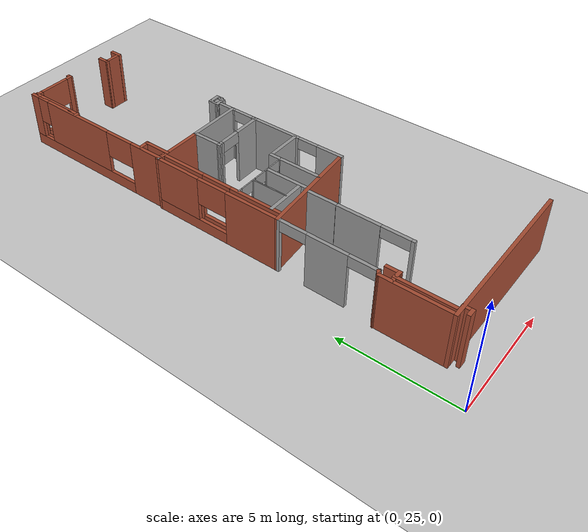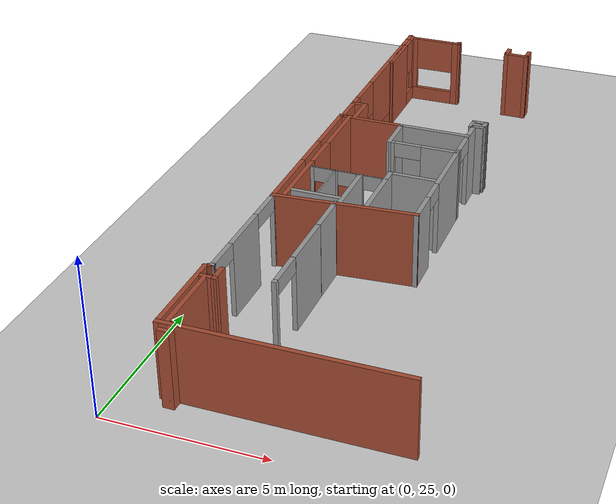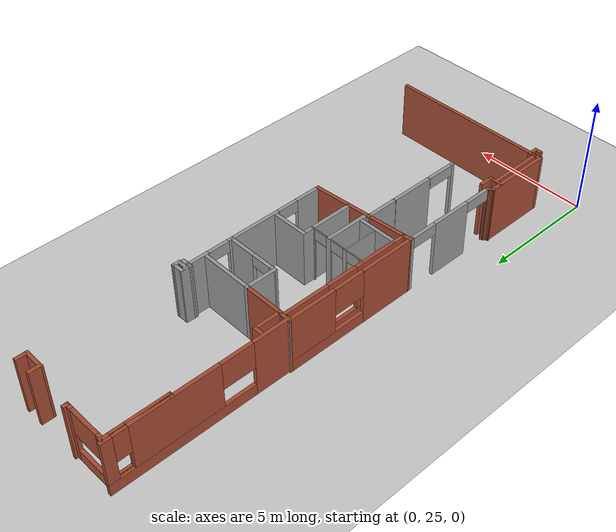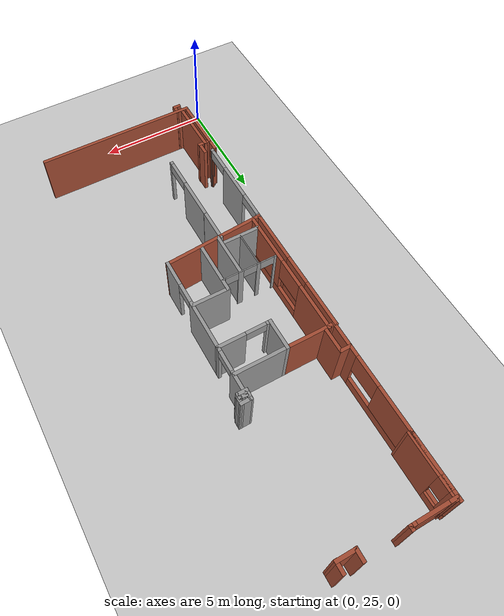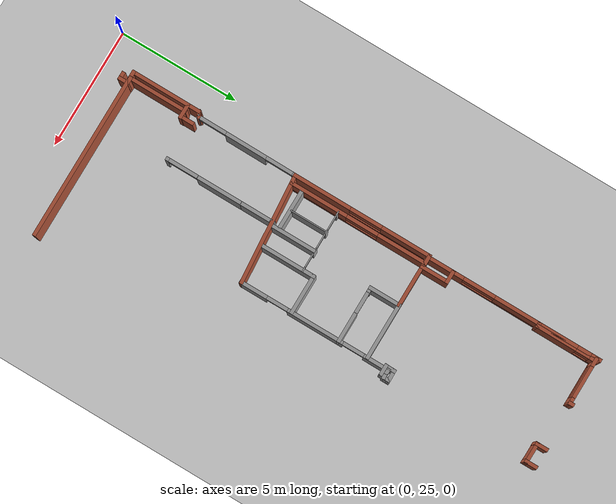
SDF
<sdf version="1.6">
 <world name="default">
  <model name="ground_plane">
   <static>1</static>
   <link name="link">
    <collision name="collision">
     <geometry><plane><normal>0 0 1</normal><size>100 100</size></plane></geometry>
     <surface><friction><ode><mu>100</mu><mu2>50</mu2></ode></friction></surface>
    </collision>
    <visual name="visual">
     <cast_shadows>0</cast_shadows>
     <geometry><plane><normal>0 0 1</normal><size>100 100</size></plane></geometry>
     <material>
      <script><uri>file://media/materials/scripts/gazebo.material</uri><name>Gazebo/Grey</name></script>
     </material>
    </visual>
   </link>
  </model>
  <model name="CVSSP">
   <pose>23.8714 24.094 0 0 -0 0</pose>
   <link name="Wall_353">
    <pose>-19.1292 14.0509 0 0 0 -3.13801</pose>
    <visual name="Wall_353_Visual_0">
     <pose>-0.582227 0 1.25 0 -0 0</pose>
     <geometry><box><size>1.27864 0.15 2.5</size></box></geometry>
     <material>
      <script><uri>file://media/materials/scripts/gazebo.material</uri><name>Gazebo/Grey</name></script>
      <ambient>1 1 1 1</ambient>
     </material>
    </visual>
    <collision name="Wall_353_Collision_0">
     <geometry><box><size>1.27864 0.15 2.5</size></box></geometry>
     <pose>-0.582227 0 1.25 0 -0 0</pose>
    </collision>
    <visual name="Wall_353_Visual_1">
     <pose>1.08932 0 1.25 0 -0 0</pose>
     <geometry><box><size>0.264455 0.15 2.5</size></box></geometry>
     <material>
      <script><uri>file://media/materials/scripts/gazebo.material</uri><name>Gazebo/Grey</name></script>
      <ambient>1 1 1 1</ambient>
     </material>
    </visual>
    <collision name="Wall_353_Collision_1">
     <geometry><box><size>0.264455 0.15 2.5</size></box></geometry>
     <pose>1.08932 0 1.25 0 -0 0</pose>
    </collision>
    <visual name="Wall_353_Visual_2">
     <pose>0.507091 0 2.25 0 -0 0</pose>
     <geometry><box><size>0.9 0.15 0.5</size></box></geometry>
     <material>
      <script><uri>file://media/materials/scripts/gazebo.material</uri><name>Gazebo/Grey</name></script>
      <ambient>1 1 1 1</ambient>
     </material>
    </visual>
    <collision name="Wall_353_Collision_2">
     <geometry><box><size>0.9 0.15 0.5</size></box></geometry>
     <pose>0.507091 0 2.25 0 -0 0</pose>
    </collision>
   </link>
   <link name="Wall_354">
    <collision name="Wall_354_Collision">
     <geometry><box><size>1.39179 0.15 2.5</size></box></geometry>
     <pose>0 0 1.25 0 -0 0</pose>
    </collision>
    <visual name="Wall_354_Visual">
     <pose>0 0 1.25 0 -0 0</pose>
     <geometry><box><size>1.39179 0.15 2.5</size></box></geometry>
     <material>
      <script><uri>file://media/materials/scripts/gazebo.material</uri><name>Gazebo/Grey</name></script>
      <ambient>0.588235 0.588235 0.588235 1</ambient>
     </material>
    </visual>
    <pose>-20.2758 14.6677 0 0 -0 1.5708</pose>
   </link>
   <link name="Wall_355">
    <collision name="Wall_355_Collision">
     <geometry><box><size>2.42378 0.15 2.5</size></box></geometry>
     <pose>0 0 1.25 0 -0 0</pose>
    </collision>
    <visual name="Wall_355_Visual">
     <pose>0 0 1.25 0 -0 0</pose>
     <geometry><box><size>2.42378 0.15 2.5</size></box></geometry>
     <material>
      <script><uri>file://media/materials/scripts/gazebo.material</uri><name>Gazebo/Grey</name></script>
      <ambient>0.588235 0.588235 0.588235 1</ambient>
     </material>
    </visual>
    <pose>-19.1389 15.2885 0 0 -0 0</pose>
   </link>
   <link name="Wall_357">
    <collision name="Wall_357_Collision">
     <geometry><box><size>2.25 0.15 2.5</size></box></geometry>
     <pose>0 0 1.25 0 -0 0</pose>
    </collision>
    <visual name="Wall_357_Visual">
     <pose>0 0 1.25 0 -0 0</pose>
     <geometry><box><size>2.25 0.15 2.5</size></box></geometry>
     <material>
      <script><uri>file://media/materials/scripts/gazebo.material</uri><name>Gazebo/Bricks</name></script>
      <ambient>1 1 1 1</ambient>
     </material>
    </visual>
    <pose>-21.3258 15.2885 0 0 -0 3.14159</pose>
   </link>
   <link name="Wall_358">
    <pose>-22.3758 19.0214 0 0 -0 1.5708</pose>
    <visual name="Wall_358_Visual_0">
     <pose>-2.99416 0 1.25 0 -0 0</pose>
     <geometry><box><size>1.62732 0.15 2.5</size></box></geometry>
     <material>
      <script><uri>file://media/materials/scripts/gazebo.material</uri><name>Gazebo/Bricks</name></script>
      <ambient>1 1 1 1</ambient>
     </material>
    </visual>
    <collision name="Wall_358_Collision_0">
     <geometry><box><size>1.62732 0.15 2.5</size></box></geometry>
     <pose>-2.99416 0 1.25 0 -0 0</pose>
    </collision>
    <visual name="Wall_358_Visual_1">
     <pose>0.813662 0 0.25 0 -0 0</pose>
     <geometry><box><size>5.98833 0.15 0.5</size></box></geometry>
     <material>
      <script><uri>file://media/materials/scripts/gazebo.material</uri><name>Gazebo/Bricks</name></script>
      <ambient>1 1 1 1</ambient>
     </material>
    </visual>
    <collision name="Wall_358_Collision_1">
     <geometry><box><size>5.98833 0.15 0.5</size></box></geometry>
     <pose>0.813662 0 0.25 0 -0 0</pose>
    </collision>
    <visual name="Wall_358_Visual_2">
     <pose>0.981652 0 1.5 0 -0 0</pose>
     <geometry><box><size>3.60157 0.15 2</size></box></geometry>
     <material>
      <script><uri>file://media/materials/scripts/gazebo.material</uri><name>Gazebo/Bricks</name></script>
      <ambient>1 1 1 1</ambient>
     </material>
    </visual>
    <collision name="Wall_358_Collision_2">
     <geometry><box><size>3.60157 0.15 2</size></box></geometry>
     <pose>0.981652 0 1.5 0 -0 0</pose>
    </collision>
    <visual name="Wall_358_Visual_3">
     <pose>3.58521 0 1.5 0 -0 0</pose>
     <geometry><box><size>0.445243 0.15 2</size></box></geometry>
     <material>
      <script><uri>file://media/materials/scripts/gazebo.material</uri><name>Gazebo/Bricks</name></script>
      <ambient>1 1 1 1</ambient>
     </material>
    </visual>
    <collision name="Wall_358_Collision_3">
     <geometry><box><size>0.445243 0.15 2</size></box></geometry>
     <pose>3.58521 0 1.5 0 -0 0</pose>
    </collision>
    <visual name="Wall_358_Visual_4">
     <pose>-1.49982 0 1.9 0 -0 0</pose>
     <geometry><box><size>1.36137 0.15 1.2</size></box></geometry>
     <material>
      <script><uri>file://media/materials/scripts/gazebo.material</uri><name>Gazebo/Bricks</name></script>
      <ambient>1 1 1 1</ambient>
     </material>
    </visual>
    <collision name="Wall_358_Collision_4">
     <geometry><box><size>1.36137 0.15 1.2</size></box></geometry>
     <pose>-1.49982 0 1.9 0 -0 0</pose>
    </collision>
    <visual name="Wall_358_Visual_5">
     <pose>3.07251 0 1.9 0 -0 0</pose>
     <geometry><box><size>0.580147 0.15 1.2</size></box></geometry>
     <material>
      <script><uri>file://media/materials/scripts/gazebo.material</uri><name>Gazebo/Bricks</name></script>
      <ambient>1 1 1 1</ambient>
     </material>
    </visual>
    <collision name="Wall_358_Collision_5">
     <geometry><box><size>0.580147 0.15 1.2</size></box></geometry>
     <pose>3.07251 0 1.9 0 -0 0</pose>
    </collision>
   </link>
   <link name="Wall_369">
    <collision name="Wall_369_Collision">
     <geometry><box><size>0.55293 0.15 2.5</size></box></geometry>
     <pose>0 0 1.25 0 -0 0</pose>
    </collision>
    <visual name="Wall_369_Visual">
     <pose>0 0 1.25 0 -0 0</pose>
     <geometry><box><size>0.55293 0.15 2.5</size></box></geometry>
     <material>
      <script><uri>file://media/materials/scripts/gazebo.material</uri><name>Gazebo/Bricks</name></script>
      <ambient>1 1 1 1</ambient>
     </material>
    </visual>
    <pose>-18.4961 22.5535 0 0 0 -1.5708</pose>
   </link>
   <link name="Wall_370">
    <collision name="Wall_370_Collision">
     <geometry><box><size>0.913815 0.15 2.5</size></box></geometry>
     <pose>0 0 1.25 0 -0 0</pose>
    </collision>
    <visual name="Wall_370_Visual">
     <pose>0 0 1.25 0 -0 0</pose>
     <geometry><box><size>0.913815 0.15 2.5</size></box></geometry>
     <material>
      <script><uri>file://media/materials/scripts/gazebo.material</uri><name>Gazebo/Bricks</name></script>
      <ambient>1 1 1 1</ambient>
     </material>
    </visual>
    <pose>-18.1142 22.3569 0 0 0 -0.007054</pose>
   </link>
   <link name="Wall_371">
    <collision name="Wall_371_Collision">
     <geometry><box><size>0.55293 0.15 2.5</size></box></geometry>
     <pose>0 0 1.25 0 -0 0</pose>
    </collision>
    <visual name="Wall_371_Visual">
     <pose>0 0 1.25 0 -0 0</pose>
     <geometry><box><size>0.55293 0.15 2.5</size></box></geometry>
     <material>
      <script><uri>file://media/materials/scripts/gazebo.material</uri><name>Gazebo/Bricks</name></script>
      <ambient>1 1 1 1</ambient>
     </material>
    </visual>
    <pose>-17.7324 22.5482 0 0 -0 1.5708</pose>
   </link>
   <link name="Wall_374">
    <collision name="Wall_374_Collision">
     <geometry><box><size>0.25 0.15 2.5</size></box></geometry>
     <pose>0 0 1.25 0 -0 0</pose>
    </collision>
    <visual name="Wall_374_Visual">
     <pose>0 0 1.25 0 -0 0</pose>
     <geometry><box><size>0.25 0.15 2.5</size></box></geometry>
     <material>
      <script><uri>file://media/materials/scripts/gazebo.material</uri><name>Gazebo/Bricks</name></script>
      <ambient>1 1 1 1</ambient>
     </material>
    </visual>
    <pose>-20.4318 22.6823 0 0 0 -1.5708</pose>
   </link>
   <link name="Wall_375">
    <pose>-21.3845 22.6294 0 0 0 -3.13852</pose>
    <visual name="Wall_375_Visual_0">
     <pose>-0.871492 0 1.25 0 -0 0</pose>
     <geometry><box><size>0.312508 0.15 2.5</size></box></geometry>
     <material>
      <script><uri>file://media/materials/scripts/gazebo.material</uri><name>Gazebo/Bricks</name></script>
      <ambient>1 1 1 1</ambient>
     </material>
    </visual>
    <collision name="Wall_375_Collision_0">
     <geometry><box><size>0.312508 0.15 2.5</size></box></geometry>
     <pose>-0.871492 0 1.25 0 -0 0</pose>
    </collision>
    <visual name="Wall_375_Visual_1">
     <pose>0.156254 0 0.25 0 -0 0</pose>
     <geometry><box><size>1.74298 0.15 0.5</size></box></geometry>
     <material>
      <script><uri>file://media/materials/scripts/gazebo.material</uri><name>Gazebo/Bricks</name></script>
      <ambient>1 1 1 1</ambient>
     </material>
    </visual>
    <collision name="Wall_375_Collision_1">
     <geometry><box><size>1.74298 0.15 0.5</size></box></geometry>
     <pose>0.156254 0 0.25 0 -0 0</pose>
    </collision>
    <visual name="Wall_375_Visual_2">
     <pose>0.835704 0 1.5 0 -0 0</pose>
     <geometry><box><size>0.384083 0.15 2</size></box></geometry>
     <material>
      <script><uri>file://media/materials/scripts/gazebo.material</uri><name>Gazebo/Bricks</name></script>
      <ambient>1 1 1 1</ambient>
     </material>
    </visual>
    <collision name="Wall_375_Collision_2">
     <geometry><box><size>0.384083 0.15 2</size></box></geometry>
     <pose>0.835704 0 1.5 0 -0 0</pose>
    </collision>
    <visual name="Wall_375_Visual_3">
     <pose>-0.035788 0 1.9 0 -0 0</pose>
     <geometry><box><size>1.3589 0.15 1.2</size></box></geometry>
     <material>
      <script><uri>file://media/materials/scripts/gazebo.material</uri><name>Gazebo/Bricks</name></script>
      <ambient>1 1 1 1</ambient>
     </material>
    </visual>
    <collision name="Wall_375_Collision_3">
     <geometry><box><size>1.3589 0.15 1.2</size></box></geometry>
     <pose>-0.035788 0 1.9 0 -0 0</pose>
    </collision>
   </link>
   <link name="Wall_377">
    <collision name="Wall_377_Collision">
     <geometry><box><size>0.25 0.15 2.5</size></box></geometry>
     <pose>0 0 1.25 0 -0 0</pose>
    </collision>
    <visual name="Wall_377_Visual">
     <pose>0 0 1.25 0 -0 0</pose>
     <geometry><box><size>0.25 0.15 2.5</size></box></geometry>
     <material>
      <script><uri>file://media/materials/scripts/gazebo.material</uri><name>Gazebo/Bricks</name></script>
      <ambient>1 1 1 1</ambient>
     </material>
    </visual>
    <pose>-22.3251 20.1236 0 0 -0 0</pose>
   </link>
   <link name="Wall_378">
    <pose>-22.2722 21.3977 0 0 -0 1.5685</pose>
    <visual name="Wall_378_Visual_0">
     <pose>-0.473393 0 1.25 0 -0 0</pose>
     <geometry><box><size>1.75143 0.15 2.5</size></box></geometry>
     <material>
      <script><uri>file://media/materials/scripts/gazebo.material</uri><name>Gazebo/Bricks</name></script>
      <ambient>1 1 1 1</ambient>
     </material>
    </visual>
    <collision name="Wall_378_Collision_0">
     <geometry><box><size>1.75143 0.15 2.5</size></box></geometry>
     <pose>-0.473393 0 1.25 0 -0 0</pose>
    </collision>
    <visual name="Wall_378_Visual_1">
     <pose>0.875712 0 0.25 0 -0 0</pose>
     <geometry><box><size>0.946786 0.15 0.5</size></box></geometry>
     <material>
      <script><uri>file://media/materials/scripts/gazebo.material</uri><name>Gazebo/Bricks</name></script>
      <ambient>1 1 1 1</ambient>
     </material>
    </visual>
    <collision name="Wall_378_Collision_1">
     <geometry><box><size>0.946786 0.15 0.5</size></box></geometry>
     <pose>0.875712 0 0.25 0 -0 0</pose>
    </collision>
    <visual name="Wall_378_Visual_2">
     <pose>1.16768 0 1.5 0 -0 0</pose>
     <geometry><box><size>0.362852 0.15 2</size></box></geometry>
     <material>
      <script><uri>file://media/materials/scripts/gazebo.material</uri><name>Gazebo/Bricks</name></script>
      <ambient>1 1 1 1</ambient>
     </material>
    </visual>
    <collision name="Wall_378_Collision_2">
     <geometry><box><size>0.362852 0.15 2</size></box></geometry>
     <pose>1.16768 0 1.5 0 -0 0</pose>
    </collision>
    <visual name="Wall_378_Visual_3">
     <pose>0.694286 0 1.9 0 -0 0</pose>
     <geometry><box><size>0.583934 0.15 1.2</size></box></geometry>
     <material>
      <script><uri>file://media/materials/scripts/gazebo.material</uri><name>Gazebo/Bricks</name></script>
      <ambient>1 1 1 1</ambient>
     </material>
    </visual>
    <collision name="Wall_378_Collision_3">
     <geometry><box><size>0.583934 0.15 1.2</size></box></geometry>
     <pose>0.694286 0 1.9 0 -0 0</pose>
    </collision>
   </link>
   <link name="Wall_380">
    <collision name="Wall_380_Collision">
     <geometry><box><size>0.550756 0.15 2.5</size></box></geometry>
     <pose>0 0 1.25 0 -0 0</pose>
    </collision>
    <visual name="Wall_380_Visual">
     <pose>0 0 1.25 0 -0 0</pose>
     <geometry><box><size>0.550756 0.15 2.5</size></box></geometry>
     <material>
      <script><uri>file://media/materials/scripts/gazebo.material</uri><name>Gazebo/Bricks</name></script>
      <ambient>1 1 1 1</ambient>
     </material>
    </visual>
    <pose>-22.152 16.3732 0 0 -0 0</pose>
   </link>
   <link name="Wall_381">
    <collision name="Wall_381_Collision">
     <geometry><box><size>1.23131 0.15 2.5</size></box></geometry>
     <pose>0 0 1.25 0 -0 0</pose>
    </collision>
    <visual name="Wall_381_Visual">
     <pose>0 0 1.25 0 -0 0</pose>
     <geometry><box><size>1.23131 0.15 2.5</size></box></geometry>
     <material>
      <script><uri>file://media/materials/scripts/gazebo.material</uri><name>Gazebo/Bricks</name></script>
      <ambient>1 1 1 1</ambient>
     </material>
    </visual>
    <pose>-21.9516 15.8325 0 0 0 -1.5708</pose>
   </link>
   <link name="Wall_383">
    <pose>-17.9783 11.9234 0 0 0 -1.5687</pose>
    <visual name="Wall_383_Visual_0">
     <pose>-1.04585 0 1.25 0 -0 0</pose>
     <geometry><box><size>2.30135 0.15 2.5</size></box></geometry>
     <material>
      <script><uri>file://media/materials/scripts/gazebo.material</uri><name>Gazebo/Grey</name></script>
      <ambient>0.588235 0.588235 0.588235 1</ambient>
     </material>
    </visual>
    <collision name="Wall_383_Collision_0">
     <geometry><box><size>2.30135 0.15 2.5</size></box></geometry>
     <pose>-1.04585 0 1.25 0 -0 0</pose>
    </collision>
    <visual name="Wall_383_Visual_1">
     <pose>1.60067 0 1.25 0 -0 0</pose>
     <geometry><box><size>1.1917 0.15 2.5</size></box></geometry>
     <material>
      <script><uri>file://media/materials/scripts/gazebo.material</uri><name>Gazebo/Grey</name></script>
      <ambient>0.588235 0.588235 0.588235 1</ambient>
     </material>
    </visual>
    <collision name="Wall_383_Collision_1">
     <geometry><box><size>1.1917 0.15 2.5</size></box></geometry>
     <pose>1.60067 0 1.25 0 -0 0</pose>
    </collision>
    <visual name="Wall_383_Visual_2">
     <pose>0.554823 0 2.25 0 -0 0</pose>
     <geometry><box><size>0.9 0.15 0.5</size></box></geometry>
     <material>
      <script><uri>file://media/materials/scripts/gazebo.material</uri><name>Gazebo/Grey</name></script>
      <ambient>0.588235 0.588235 0.588235 1</ambient>
     </material>
    </visual>
    <collision name="Wall_383_Collision_2">
     <geometry><box><size>0.9 0.15 0.5</size></box></geometry>
     <pose>0.554823 0 2.25 0 -0 0</pose>
    </collision>
   </link>
   <link name="Wall_384">
    <collision name="Wall_384_Collision">
     <geometry><box><size>4.62239 0.15 2.5</size></box></geometry>
     <pose>0 0 1.25 0 -0 0</pose>
    </collision>
    <visual name="Wall_384_Visual">
     <pose>0 0 1.25 0 -0 0</pose>
     <geometry><box><size>4.62239 0.15 2.5</size></box></geometry>
     <material>
      <script><uri>file://media/materials/scripts/gazebo.material</uri><name>Gazebo/Bricks</name></script>
      <ambient>1 1 1 1</ambient>
     </material>
    </visual>
    <pose>-20.2033 9.63933 0 0 0 -3.06433</pose>
   </link>
   <link name="Wall_385">
    <pose>-22.4439 7.35474 0 0 0 -1.57601</pose>
    <visual name="Wall_385_Visual_0">
     <pose>-2.08672 0 1.25 0 -0 0</pose>
     <geometry><box><size>0.200399 0.15 2.5</size></box></geometry>
     <material>
      <script><uri>file://media/materials/scripts/gazebo.material</uri><name>Gazebo/Grey</name></script>
      <ambient>0.588235 0.588235 0.588235 1</ambient>
     </material>
    </visual>
    <collision name="Wall_385_Collision_0">
     <geometry><box><size>0.200399 0.15 2.5</size></box></geometry>
     <pose>-2.08672 0 1.25 0 -0 0</pose>
    </collision>
    <visual name="Wall_385_Visual_1">
     <pose>0.046569 0 1.25 0 -0 0</pose>
     <geometry><box><size>1.75817 0.15 2.5</size></box></geometry>
     <material>
      <script><uri>file://media/materials/scripts/gazebo.material</uri><name>Gazebo/Grey</name></script>
      <ambient>0.588235 0.588235 0.588235 1</ambient>
     </material>
    </visual>
    <collision name="Wall_385_Collision_1">
     <geometry><box><size>1.75817 0.15 2.5</size></box></geometry>
     <pose>0.046569 0 1.25 0 -0 0</pose>
    </collision>
    <visual name="Wall_385_Visual_2">
     <pose>0.925336 0 1.25 0 -0 0</pose>
     <geometry><box><size>0.000635 0.15 2.5</size></box></geometry>
     <material>
      <script><uri>file://media/materials/scripts/gazebo.material</uri><name>Gazebo/Grey</name></script>
      <ambient>0.588235 0.588235 0.588235 1</ambient>
     </material>
    </visual>
    <collision name="Wall_385_Collision_2">
     <geometry><box><size>0.000635 0.15 2.5</size></box></geometry>
     <pose>0.925336 0 1.25 0 -0 0</pose>
    </collision>
    <visual name="Wall_385_Visual_3">
     <pose>2.12229 0 1.25 0 -0 0</pose>
     <geometry><box><size>0.129262 0.15 2.5</size></box></geometry>
     <material>
      <script><uri>file://media/materials/scripts/gazebo.material</uri><name>Gazebo/Grey</name></script>
      <ambient>0.588235 0.588235 0.588235 1</ambient>
     </material>
    </visual>
    <collision name="Wall_385_Collision_3">
     <geometry><box><size>0.129262 0.15 2.5</size></box></geometry>
     <pose>2.12229 0 1.25 0 -0 0</pose>
    </collision>
    <visual name="Wall_385_Visual_4">
     <pose>-1.40968 0 2.25 0 -0 0</pose>
     <geometry><box><size>1.15368 0.15 0.5</size></box></geometry>
     <material>
      <script><uri>file://media/materials/scripts/gazebo.material</uri><name>Gazebo/Grey</name></script>
      <ambient>0.588235 0.588235 0.588235 1</ambient>
     </material>
    </visual>
    <collision name="Wall_385_Collision_4">
     <geometry><box><size>1.15368 0.15 0.5</size></box></geometry>
     <pose>-1.40968 0 2.25 0 -0 0</pose>
    </collision>
    <visual name="Wall_385_Visual_5">
     <pose>1.49165 0 2.25 0 -0 0</pose>
     <geometry><box><size>1.132 0.15 0.5</size></box></geometry>
     <material>
      <script><uri>file://media/materials/scripts/gazebo.material</uri><name>Gazebo/Grey</name></script>
      <ambient>0.588235 0.588235 0.588235 1</ambient>
     </material>
    </visual>
    <collision name="Wall_385_Collision_5">
     <geometry><box><size>1.132 0.15 0.5</size></box></geometry>
     <pose>1.49165 0 2.25 0 -0 0</pose>
    </collision>
    <visual name="Wall_385_Visual_6">
     <pose>1.49165 0 2.25 0 -0 0</pose>
     <geometry><box><size>1.132 0.15 0.5</size></box></geometry>
     <material>
      <script><uri>file://media/materials/scripts/gazebo.material</uri><name>Gazebo/Grey</name></script>
      <ambient>0.588235 0.588235 0.588235 1</ambient>
     </material>
    </visual>
    <collision name="Wall_385_Collision_6">
     <geometry><box><size>1.132 0.15 0.5</size></box></geometry>
     <pose>1.49165 0 2.25 0 -0 0</pose>
    </collision>
   </link>
   <link name="Wall_389">
    <pose>-20.4957 7.35057 0 0 -0 1.5708</pose>
    <visual name="Wall_389_Visual_0">
     <pose>-2.30009 0 1.25 0 -0 0</pose>
     <geometry><box><size>0.14981 0.15 2.5</size></box></geometry>
     <material>
      <script><uri>file://media/materials/scripts/gazebo.material</uri><name>Gazebo/Grey</name></script>
      <ambient>0.588235 0.588235 0.588235 1</ambient>
     </material>
    </visual>
    <collision name="Wall_389_Collision_0">
     <geometry><box><size>0.14981 0.15 2.5</size></box></geometry>
     <pose>-2.30009 0 1.25 0 -0 0</pose>
    </collision>
    <visual name="Wall_389_Visual_1">
     <pose>-0.035618 0 1.25 0 -0 0</pose>
     <geometry><box><size>1.88714 0.15 2.5</size></box></geometry>
     <material>
      <script><uri>file://media/materials/scripts/gazebo.material</uri><name>Gazebo/Grey</name></script>
      <ambient>0.588235 0.588235 0.588235 1</ambient>
     </material>
    </visual>
    <collision name="Wall_389_Collision_1">
     <geometry><box><size>1.88714 0.15 2.5</size></box></geometry>
     <pose>-0.035618 0 1.25 0 -0 0</pose>
    </collision>
    <visual name="Wall_389_Visual_2">
     <pose>1.64628 0 1.25 0 -0 0</pose>
     <geometry><box><size>1.45744 0.15 2.5</size></box></geometry>
     <material>
      <script><uri>file://media/materials/scripts/gazebo.material</uri><name>Gazebo/Grey</name></script>
      <ambient>0.588235 0.588235 0.588235 1</ambient>
     </material>
    </visual>
    <collision name="Wall_389_Collision_2">
     <geometry><box><size>1.45744 0.15 2.5</size></box></geometry>
     <pose>1.64628 0 1.25 0 -0 0</pose>
    </collision>
    <visual name="Wall_389_Visual_3">
     <pose>2.27598 0 1.25 0 -0 0</pose>
     <geometry><box><size>0.198046 0.15 2.5</size></box></geometry>
     <material>
      <script><uri>file://media/materials/scripts/gazebo.material</uri><name>Gazebo/Grey</name></script>
      <ambient>0.588235 0.588235 0.588235 1</ambient>
     </material>
    </visual>
    <collision name="Wall_389_Collision_3">
     <geometry><box><size>0.198046 0.15 2.5</size></box></geometry>
     <pose>2.27598 0 1.25 0 -0 0</pose>
    </collision>
    <visual name="Wall_389_Visual_4">
     <pose>-1.60696 0 2.25 0 -0 0</pose>
     <geometry><box><size>1.23646 0.15 0.5</size></box></geometry>
     <material>
      <script><uri>file://media/materials/scripts/gazebo.material</uri><name>Gazebo/Grey</name></script>
      <ambient>0.588235 0.588235 0.588235 1</ambient>
     </material>
    </visual>
    <collision name="Wall_389_Collision_4">
     <geometry><box><size>1.23646 0.15 0.5</size></box></geometry>
     <pose>-1.60696 0 2.25 0 -0 0</pose>
    </collision>
    <visual name="Wall_389_Visual_5">
     <pose>0.912756 0 2.25 0 -0 0</pose>
     <geometry><box><size>0.009604 0.15 0.5</size></box></geometry>
     <material>
      <script><uri>file://media/materials/scripts/gazebo.material</uri><name>Gazebo/Grey</name></script>
      <ambient>0.588235 0.588235 0.588235 1</ambient>
     </material>
    </visual>
    <collision name="Wall_389_Collision_5">
     <geometry><box><size>0.009604 0.15 0.5</size></box></geometry>
     <pose>0.912756 0 2.25 0 -0 0</pose>
    </collision>
   </link>
   <link name="Wall_391">
    <pose>-22.4329 12.3917 0 0 -0 1.5708</pose>
    <visual name="Wall_391_Visual_0">
     <pose>-1.76019 0 1.25 0 -0 0</pose>
     <geometry><box><size>2.47961 0.15 2.5</size></box></geometry>
     <material>
      <script><uri>file://media/materials/scripts/gazebo.material</uri><name>Gazebo/Bricks</name></script>
      <ambient>1 1 1 1</ambient>
     </material>
    </visual>
    <collision name="Wall_391_Collision_0">
     <geometry><box><size>2.47961 0.15 2.5</size></box></geometry>
     <pose>-1.76019 0 1.25 0 -0 0</pose>
    </collision>
    <visual name="Wall_391_Visual_1">
     <pose>1.2398 0 0.25 0 -0 0</pose>
     <geometry><box><size>3.52037 0.15 0.5</size></box></geometry>
     <material>
      <script><uri>file://media/materials/scripts/gazebo.material</uri><name>Gazebo/Bricks</name></script>
      <ambient>1 1 1 1</ambient>
     </material>
    </visual>
    <collision name="Wall_391_Collision_1">
     <geometry><box><size>3.52037 0.15 0.5</size></box></geometry>
     <pose>1.2398 0 0.25 0 -0 0</pose>
    </collision>
    <visual name="Wall_391_Visual_2">
     <pose>1.92424 0 1.5 0 -0 0</pose>
     <geometry><box><size>2.1515 0.15 2</size></box></geometry>
     <material>
      <script><uri>file://media/materials/scripts/gazebo.material</uri><name>Gazebo/Bricks</name></script>
      <ambient>1 1 1 1</ambient>
     </material>
    </visual>
    <collision name="Wall_391_Collision_2">
     <geometry><box><size>2.1515 0.15 2</size></box></geometry>
     <pose>1.92424 0 1.5 0 -0 0</pose>
    </collision>
    <visual name="Wall_391_Visual_3">
     <pose>0.164051 0 1.9 0 -0 0</pose>
     <geometry><box><size>1.36887 0.15 1.2</size></box></geometry>
     <material>
      <script><uri>file://media/materials/scripts/gazebo.material</uri><name>Gazebo/Bricks</name></script>
      <ambient>1 1 1 1</ambient>
     </material>
    </visual>
    <collision name="Wall_391_Collision_3">
     <geometry><box><size>1.36887 0.15 1.2</size></box></geometry>
     <pose>0.164051 0 1.9 0 -0 0</pose>
    </collision>
   </link>
   <link name="Wall_392">
    <collision name="Wall_392_Collision">
     <geometry><box><size>0.15 0.15 2.5</size></box></geometry>
     <pose>0 0 1.25 0 -0 0</pose>
    </collision>
    <visual name="Wall_392_Visual">
     <pose>0 0 1.25 0 -0 0</pose>
     <geometry><box><size>0.15 0.15 2.5</size></box></geometry>
     <material>
      <script><uri>file://media/materials/scripts/gazebo.material</uri><name>Gazebo/Grey</name></script>
      <ambient>1 1 1 1</ambient>
     </material>
    </visual>
    <pose>-22.4329 15.3167 0 0 -0 0</pose>
   </link>
   <link name="Wall_394">
    <collision name="Wall_394_Collision">
     <geometry><box><size>0.459201 0.15 2.5</size></box></geometry>
     <pose>0 0 1.25 0 -0 0</pose>
    </collision>
    <visual name="Wall_394_Visual">
     <pose>0 0 1.25 0 -0 0</pose>
     <geometry><box><size>0.459201 0.15 2.5</size></box></geometry>
     <material>
      <script><uri>file://media/materials/scripts/gazebo.material</uri><name>Gazebo/Bricks</name></script>
      <ambient>1 1 1 1</ambient>
     </material>
    </visual>
    <pose>-22.2785 15.3176 0 0 -0 0.005531</pose>
   </link>
   <link name="Wall_395">
    <pose>-22.124 12.4222 0 0 0 -1.5708</pose>
    <visual name="Wall_395_Visual_0">
     <pose>-1.90113 0 1.25 0 -0 0</pose>
     <geometry><box><size>2.1403 0.15 2.5</size></box></geometry>
     <material>
      <script><uri>file://media/materials/scripts/gazebo.material</uri><name>Gazebo/Bricks</name></script>
      <ambient>1 1 1 1</ambient>
     </material>
    </visual>
    <collision name="Wall_395_Collision_0">
     <geometry><box><size>2.1403 0.15 2.5</size></box></geometry>
     <pose>-1.90113 0 1.25 0 -0 0</pose>
    </collision>
    <visual name="Wall_395_Visual_1">
     <pose>1.07015 0 0.25 0 -0 0</pose>
     <geometry><box><size>3.80226 0.15 0.5</size></box></geometry>
     <material>
      <script><uri>file://media/materials/scripts/gazebo.material</uri><name>Gazebo/Bricks</name></script>
      <ambient>1 1 1 1</ambient>
     </material>
    </visual>
    <collision name="Wall_395_Collision_1">
     <geometry><box><size>3.80226 0.15 0.5</size></box></geometry>
     <pose>1.07015 0 0.25 0 -0 0</pose>
    </collision>
    <visual name="Wall_395_Visual_2">
     <pose>1.74597 0 1.5 0 -0 0</pose>
     <geometry><box><size>2.45063 0.15 2</size></box></geometry>
     <material>
      <script><uri>file://media/materials/scripts/gazebo.material</uri><name>Gazebo/Bricks</name></script>
      <ambient>1 1 1 1</ambient>
     </material>
    </visual>
    <collision name="Wall_395_Collision_2">
     <geometry><box><size>2.45063 0.15 2</size></box></geometry>
     <pose>1.74597 0 1.5 0 -0 0</pose>
    </collision>
    <visual name="Wall_395_Visual_3">
     <pose>-0.155166 0 1.9 0 -0 0</pose>
     <geometry><box><size>1.35163 0.15 1.2</size></box></geometry>
     <material>
      <script><uri>file://media/materials/scripts/gazebo.material</uri><name>Gazebo/Bricks</name></script>
      <ambient>1 1 1 1</ambient>
     </material>
    </visual>
    <collision name="Wall_395_Collision_3">
     <geometry><box><size>1.35163 0.15 1.2</size></box></geometry>
     <pose>-0.155166 0 1.9 0 -0 0</pose>
    </collision>
   </link>
   <link name="Wall_397">
    <collision name="Wall_397_Collision">
     <geometry><box><size>1.71055 0.15 2.5</size></box></geometry>
     <pose>0 0 1.25 0 -0 0</pose>
    </collision>
    <visual name="Wall_397_Visual">
     <pose>0 0 1.25 0 -0 0</pose>
     <geometry><box><size>1.71055 0.15 2.5</size></box></geometry>
     <material>
      <script><uri>file://media/materials/scripts/gazebo.material</uri><name>Gazebo/Grey</name></script>
      <ambient>1 1 1 1</ambient>
     </material>
    </visual>
    <pose>-18.7649 11.999 0 0 -0 3.14159</pose>
   </link>
   <link name="Wall_398">
    <collision name="Wall_398_Collision">
     <geometry><box><size>2.41151 0.15 2.5</size></box></geometry>
     <pose>0 0 1.25 0 -0 0</pose>
    </collision>
    <visual name="Wall_398_Visual">
     <pose>0 0 1.25 0 -0 0</pose>
     <geometry><box><size>2.41151 0.15 2.5</size></box></geometry>
     <material>
      <script><uri>file://media/materials/scripts/gazebo.material</uri><name>Gazebo/Grey</name></script>
      <ambient>1 1 1 1</ambient>
     </material>
    </visual>
    <pose>-19.5452 10.8682 0 0 0 -1.5708</pose>
   </link>
   <link name="Wall_401">
    <collision name="Wall_401_Collision">
     <geometry><box><size>2.01472 0.15 2.5</size></box></geometry>
     <pose>0 0 1.25 0 -0 0</pose>
    </collision>
    <visual name="Wall_401_Visual">
     <pose>0 0 1.25 0 -0 0</pose>
     <geometry><box><size>2.01472 0.15 2.5</size></box></geometry>
     <material>
      <script><uri>file://media/materials/scripts/gazebo.material</uri><name>Gazebo/Grey</name></script>
      <ambient>1 1 1 1</ambient>
     </material>
    </visual>
    <pose>-20.3783 10.5641 0 0 -0 1.5708</pose>
   </link>
   <link name="Wall_403">
    <collision name="Wall_403_Collision">
     <geometry><box><size>1.75 0.15 2.5</size></box></geometry>
     <pose>0 0 1.25 0 -0 0</pose>
    </collision>
    <visual name="Wall_403_Visual">
     <pose>0 0 1.25 0 -0 0</pose>
     <geometry><box><size>1.75 0.15 2.5</size></box></geometry>
     <material>
      <script><uri>file://media/materials/scripts/gazebo.material</uri><name>Gazebo/Grey</name></script>
      <ambient>1 1 1 1</ambient>
     </material>
    </visual>
    <pose>-21.3108 9.97555 0 0 -0 0</pose>
   </link>
   <link name="Wall_405">
    <collision name="Wall_405_Collision">
     <geometry><box><size>1.558 0.05 2.5</size></box></geometry>
     <pose>0 0 1.25 0 -0 0</pose>
    </collision>
    <visual name="Wall_405_Visual">
     <pose>0 0 1.25 0 -0 0</pose>
     <geometry><box><size>1.558 0.05 2.5</size></box></geometry>
     <material>
      <script><uri>file://media/materials/scripts/gazebo.material</uri><name>Gazebo/Grey</name></script>
      <ambient>1 1 1 1</ambient>
     </material>
    </visual>
    <pose>-21.2251 10.756 0 0 -0 1.5708</pose>
   </link>
   <link name="Wall_409">
    <pose>-20.7979 11.549 0 0 -0 0</pose>
    <visual name="Wall_409_Visual_0">
     <pose>-1.22709 0 1.25 0 -0 0</pose>
     <geometry><box><size>0.196113 0.05 2.5</size></box></geometry>
     <material>
      <script><uri>file://media/materials/scripts/gazebo.material</uri><name>Gazebo/Grey</name></script>
      <ambient>1 1 1 1</ambient>
     </material>
    </visual>
    <collision name="Wall_409_Collision_0">
     <geometry><box><size>0.196113 0.05 2.5</size></box></geometry>
     <pose>-1.22709 0 1.25 0 -0 0</pose>
    </collision>
    <visual name="Wall_409_Visual_1">
     <pose>-0.41515 0 1.25 0 -0 0</pose>
     <geometry><box><size>0.172188 0.05 2.5</size></box></geometry>
     <material>
      <script><uri>file://media/materials/scripts/gazebo.material</uri><name>Gazebo/Grey</name></script>
      <ambient>1 1 1 1</ambient>
     </material>
    </visual>
    <collision name="Wall_409_Collision_1">
     <geometry><box><size>0.172188 0.05 2.5</size></box></geometry>
     <pose>-0.41515 0 1.25 0 -0 0</pose>
    </collision>
    <visual name="Wall_409_Visual_2">
     <pose>0.406657 0 1.25 0 -0 0</pose>
     <geometry><box><size>0.24285 0.05 2.5</size></box></geometry>
     <material>
      <script><uri>file://media/materials/scripts/gazebo.material</uri><name>Gazebo/Grey</name></script>
      <ambient>1 1 1 1</ambient>
     </material>
    </visual>
    <collision name="Wall_409_Collision_2">
     <geometry><box><size>0.24285 0.05 2.5</size></box></geometry>
     <pose>0.406657 0 1.25 0 -0 0</pose>
    </collision>
    <visual name="Wall_409_Visual_3">
     <pose>1.22248 0 1.25 0 -0 0</pose>
     <geometry><box><size>0.205332 0.05 2.5</size></box></geometry>
     <material>
      <script><uri>file://media/materials/scripts/gazebo.material</uri><name>Gazebo/Grey</name></script>
      <ambient>1 1 1 1</ambient>
     </material>
    </visual>
    <collision name="Wall_409_Collision_3">
     <geometry><box><size>0.205332 0.05 2.5</size></box></geometry>
     <pose>1.22248 0 1.25 0 -0 0</pose>
    </collision>
    <visual name="Wall_409_Visual_4">
     <pose>-0.815138 0 2.25 0 -0 0</pose>
     <geometry><box><size>0.627788 0.05 0.5</size></box></geometry>
     <material>
      <script><uri>file://media/materials/scripts/gazebo.material</uri><name>Gazebo/Grey</name></script>
      <ambient>1 1 1 1</ambient>
     </material>
    </visual>
    <collision name="Wall_409_Collision_4">
     <geometry><box><size>0.627788 0.05 0.5</size></box></geometry>
     <pose>-0.815138 0 2.25 0 -0 0</pose>
    </collision>
    <visual name="Wall_409_Visual_5">
     <pose>-0.021912 0 2.25 0 -0 0</pose>
     <geometry><box><size>0.614288 0.05 0.5</size></box></geometry>
     <material>
      <script><uri>file://media/materials/scripts/gazebo.material</uri><name>Gazebo/Grey</name></script>
      <ambient>1 1 1 1</ambient>
     </material>
    </visual>
    <collision name="Wall_409_Collision_5">
     <geometry><box><size>0.614288 0.05 0.5</size></box></geometry>
     <pose>-0.021912 0 2.25 0 -0 0</pose>
    </collision>
    <visual name="Wall_409_Visual_6">
     <pose>0.823948 0 2.25 0 -0 0</pose>
     <geometry><box><size>0.591732 0.05 0.5</size></box></geometry>
     <material>
      <script><uri>file://media/materials/scripts/gazebo.material</uri><name>Gazebo/Grey</name></script>
      <ambient>1 1 1 1</ambient>
     </material>
    </visual>
    <collision name="Wall_409_Collision_6">
     <geometry><box><size>0.591732 0.05 0.5</size></box></geometry>
     <pose>0.823948 0 2.25 0 -0 0</pose>
    </collision>
   </link>
   <link name="Wall_427">
    <collision name="Wall_427_Collision">
     <geometry><box><size>7.25 0.15 2.5</size></box></geometry>
     <pose>0 0 1.25 0 -0 0</pose>
    </collision>
    <visual name="Wall_427_Visual">
     <pose>0 0 1.25 0 -0 0</pose>
     <geometry><box><size>7.25 0.15 2.5</size></box></geometry>
     <material>
      <script><uri>file://media/materials/scripts/gazebo.material</uri><name>Gazebo/Bricks</name></script>
      <ambient>1 1 1 1</ambient>
     </material>
    </visual>
    <pose>-19.076 2.26798 0 0 -0 3.14159</pose>
   </link>
   <link name="Wall_428">
    <collision name="Wall_428_Collision">
     <geometry><box><size>3 0.15 2.5</size></box></geometry>
     <pose>0 0 1.25 0 -0 0</pose>
    </collision>
    <visual name="Wall_428_Visual">
     <pose>0 0 1.25 0 -0 0</pose>
     <geometry><box><size>3 0.15 2.5</size></box></geometry>
     <material>
      <script><uri>file://media/materials/scripts/gazebo.material</uri><name>Gazebo/Bricks</name></script>
      <ambient>1 1 1 1</ambient>
     </material>
    </visual>
    <pose>-22.626 3.69298 0 0 -0 1.5708</pose>
   </link>
   <link name="Wall_429">
    <collision name="Wall_429_Collision">
     <geometry><box><size>0.362141 0.15 2.5</size></box></geometry>
     <pose>0 0 1.25 0 -0 0</pose>
    </collision>
    <visual name="Wall_429_Visual">
     <pose>0 0 1.25 0 -0 0</pose>
     <geometry><box><size>0.362141 0.15 2.5</size></box></geometry>
     <material>
      <script><uri>file://media/materials/scripts/gazebo.material</uri><name>Gazebo/Bricks</name></script>
      <ambient>1 1 1 1</ambient>
     </material>
    </visual>
    <pose>-22.5404 5.18036 0 0 -0 0.630038</pose>
   </link>
   <link name="Wall_431">
    <collision name="Wall_431_Collision">
     <geometry><box><size>0.669961 0.15 2.5</size></box></geometry>
     <pose>0 0 1.25 0 -0 0</pose>
    </collision>
    <visual name="Wall_431_Visual">
     <pose>0 0 1.25 0 -0 0</pose>
     <geometry><box><size>0.669961 0.15 2.5</size></box></geometry>
     <material>
      <script><uri>file://media/materials/scripts/gazebo.material</uri><name>Gazebo/Bricks</name></script>
      <ambient>1 1 1 1</ambient>
     </material>
    </visual>
    <pose>-22.3657 4.64872 0 0 0 -0.002619</pose>
   </link>
   <link name="Wall_432">
    <collision name="Wall_432_Collision">
     <geometry><box><size>0.639722 0.15 2.5</size></box></geometry>
     <pose>0 0 1.25 0 -0 0</pose>
    </collision>
    <visual name="Wall_432_Visual">
     <pose>0 0 1.25 0 -0 0</pose>
     <geometry><box><size>0.639722 0.15 2.5</size></box></geometry>
     <material>
      <script><uri>file://media/materials/scripts/gazebo.material</uri><name>Gazebo/Bricks</name></script>
      <ambient>1 1 1 1</ambient>
     </material>
    </visual>
    <pose>-22.119 4.8929 0 0 -0 1.5708</pose>
   </link>
   <link name="Wall_643">
    <collision name="Wall_643_Collision">
     <geometry><box><size>0.542409 0.15 2.5</size></box></geometry>
     <pose>0 0 1.25 0 -0 0</pose>
    </collision>
    <visual name="Wall_643_Visual">
     <pose>0 0 1.25 0 -0 0</pose>
     <geometry><box><size>0.542409 0.15 2.5</size></box></geometry>
     <material>
      <script><uri>file://media/materials/scripts/gazebo.material</uri><name>Gazebo/Grey</name></script>
      <ambient>1 1 1 1</ambient>
     </material>
    </visual>
    <pose>-17.8681 16.3987 0 0 -0 0.016948</pose>
   </link>
   <link name="Wall_644">
    <collision name="Wall_644_Collision">
     <geometry><box><size>0.362905 0.15 2.5</size></box></geometry>
     <pose>0 0 1.25 0 -0 0</pose>
    </collision>
    <visual name="Wall_644_Visual">
     <pose>0 0 1.25 0 -0 0</pose>
     <geometry><box><size>0.362905 0.15 2.5</size></box></geometry>
     <material>
      <script><uri>file://media/materials/scripts/gazebo.material</uri><name>Gazebo/Grey</name></script>
      <ambient>1 1 1 1</ambient>
     </material>
    </visual>
    <pose>-17.6719 16.2956 0 0 0 -1.5708</pose>
   </link>
   <link name="Wall_645">
    <collision name="Wall_645_Collision">
     <geometry><box><size>0.210219 0.15 2.5</size></box></geometry>
     <pose>0 0 1.25 0 -0 0</pose>
    </collision>
    <visual name="Wall_645_Visual">
     <pose>0 0 1.25 0 -0 0</pose>
     <geometry><box><size>0.210219 0.15 2.5</size></box></geometry>
     <material>
      <script><uri>file://media/materials/scripts/gazebo.material</uri><name>Gazebo/Grey</name></script>
      <ambient>1 1 1 1</ambient>
     </material>
    </visual>
    <pose>-17.7019 16.1859 0 0 0 -3.03093</pose>
   </link>
   <link name="Wall_646">
    <collision name="Wall_646_Collision">
     <geometry><box><size>0.296301 0.15 2.5</size></box></geometry>
     <pose>0 0 1.25 0 -0 0</pose>
    </collision>
    <visual name="Wall_646_Visual">
     <pose>0 0 1.25 0 -0 0</pose>
     <geometry><box><size>0.296301 0.15 2.5</size></box></geometry>
     <material>
      <script><uri>file://media/materials/scripts/gazebo.material</uri><name>Gazebo/Grey</name></script>
      <ambient>1 1 1 1</ambient>
     </material>
    </visual>
    <pose>-17.7318 16.1161 0 0 0 -1.5708</pose>
   </link>
   <link name="Wall_647">
    <collision name="Wall_647_Collision">
     <geometry><box><size>0.5 0.15 2.5</size></box></geometry>
     <pose>0 0 1.25 0 -0 0</pose>
    </collision>
    <visual name="Wall_647_Visual">
     <pose>0 0 1.25 0 -0 0</pose>
     <geometry><box><size>0.5 0.15 2.5</size></box></geometry>
     <material>
      <script><uri>file://media/materials/scripts/gazebo.material</uri><name>Gazebo/Grey</name></script>
      <ambient>1 1 1 1</ambient>
     </material>
    </visual>
    <pose>-17.9068 16.0363 0 0 -0 3.14159</pose>
   </link>
   <link name="Wall_648">
    <collision name="Wall_648_Collision">
     <geometry><box><size>0.509266 0.15 2.5</size></box></geometry>
     <pose>0 0 1.25 0 -0 0</pose>
    </collision>
    <visual name="Wall_648_Visual">
     <pose>0 0 1.25 0 -0 0</pose>
     <geometry><box><size>0.509266 0.15 2.5</size></box></geometry>
     <material>
      <script><uri>file://media/materials/scripts/gazebo.material</uri><name>Gazebo/Grey</name></script>
      <ambient>1 1 1 1</ambient>
     </material>
    </visual>
    <pose>-18.0764 16.2158 0 0 -0 1.5406</pose>
   </link>
   <link name="Wall_71">
    <collision name="Wall_71_Collision">
     <geometry><box><size>0.253869 0.15 2.5</size></box></geometry>
     <pose>0 0 1.25 0 -0 0</pose>
    </collision>
    <visual name="Wall_71_Visual">
     <pose>0 0 1.25 0 -0 0</pose>
     <geometry><box><size>0.253869 0.15 2.5</size></box></geometry>
     <material>
      <script><uri>file://media/materials/scripts/gazebo.material</uri><name>Gazebo/Grey</name></script>
      <ambient>1 1 1 1</ambient>
     </material>
    </visual>
    <pose>-17.931 16.1912 0 0 -0 3.06873</pose>
   </link>
   <link name="Wall_713">
    <collision name="Wall_713_Collision">
     <geometry><box><size>0.361193 0.15 2.5</size></box></geometry>
     <pose>0 0 1.25 0 -0 0</pose>
    </collision>
    <visual name="Wall_713_Visual">
     <pose>0 0 1.25 0 -0 0</pose>
     <geometry><box><size>0.361193 0.15 2.5</size></box></geometry>
     <material>
      <script><uri>file://media/materials/scripts/gazebo.material</uri><name>Gazebo/Bricks</name></script>
      <ambient>1 1 1 1</ambient>
     </material>
    </visual>
    <pose>-22.2727 1.95549 0 0 -0 0</pose>
   </link>
   <link name="Wall_714">
    <collision name="Wall_714_Collision">
     <geometry><box><size>0.471817 0.15 2.5</size></box></geometry>
     <pose>0 0 1.25 0 -0 0</pose>
    </collision>
    <visual name="Wall_714_Visual">
     <pose>0 0 1.25 0 -0 0</pose>
     <geometry><box><size>0.471817 0.15 2.5</size></box></geometry>
     <material>
      <script><uri>file://media/materials/scripts/gazebo.material</uri><name>Gazebo/Bricks</name></script>
      <ambient>1 1 1 1</ambient>
     </material>
    </visual>
    <pose>-22.1671 2.1164 0 0 -0 1.5708</pose>
   </link>
   <link name="Wall_715">
    <collision name="Wall_715_Collision">
     <geometry><box><size>0.351387 0.15 2.5</size></box></geometry>
     <pose>0 0 1.25 0 -0 0</pose>
    </collision>
    <visual name="Wall_715_Visual">
     <pose>0 0 1.25 0 -0 0</pose>
     <geometry><box><size>0.351387 0.15 2.5</size></box></geometry>
     <material>
      <script><uri>file://media/materials/scripts/gazebo.material</uri><name>Gazebo/Bricks</name></script>
      <ambient>1 1 1 1</ambient>
     </material>
    </visual>
    <pose>-22.2677 2.28234 0 0 -0 3.09163</pose>
   </link>
   <link name="Wall_716">
    <collision name="Wall_716_Collision">
     <geometry><box><size>2.53346 0.15 2.5</size></box></geometry>
     <pose>0 0 1.25 0 -0 0</pose>
    </collision>
    <visual name="Wall_716_Visual">
     <pose>0 0 1.25 0 -0 0</pose>
     <geometry><box><size>2.53346 0.15 2.5</size></box></geometry>
     <material>
      <script><uri>file://media/materials/scripts/gazebo.material</uri><name>Gazebo/Bricks</name></script>
      <ambient>1 1 1 1</ambient>
     </material>
    </visual>
    <pose>-22.3783 3.4791 0 0 -0 1.5708</pose>
   </link>
   <link name="Wall_72">
    <pose>-17.9828 15.125 0 0 0 -1.57074</pose>
    <visual name="Wall_72_Visual_0">
     <pose>-0.575826 0 1.25 0 -0 0</pose>
     <geometry><box><size>1.13835 0.15 2.5</size></box></geometry>
     <material>
      <script><uri>file://media/materials/scripts/gazebo.material</uri><name>Gazebo/Grey</name></script>
      <ambient>0.588235 0.588235 0.588235 1</ambient>
     </material>
    </visual>
    <collision name="Wall_72_Collision_0">
     <geometry><box><size>1.13835 0.15 2.5</size></box></geometry>
     <pose>-0.575826 0 1.25 0 -0 0</pose>
    </collision>
    <visual name="Wall_72_Visual_1">
     <pose>1.01917 0 1.25 0 -0 0</pose>
     <geometry><box><size>0.251651 0.15 2.5</size></box></geometry>
     <material>
      <script><uri>file://media/materials/scripts/gazebo.material</uri><name>Gazebo/Grey</name></script>
      <ambient>0.588235 0.588235 0.588235 1</ambient>
     </material>
    </visual>
    <collision name="Wall_72_Collision_1">
     <geometry><box><size>0.251651 0.15 2.5</size></box></geometry>
     <pose>1.01917 0 1.25 0 -0 0</pose>
    </collision>
    <visual name="Wall_72_Visual_2">
     <pose>0.443349 0 2.25 0 -0 0</pose>
     <geometry><box><size>0.9 0.15 0.5</size></box></geometry>
     <material>
      <script><uri>file://media/materials/scripts/gazebo.material</uri><name>Gazebo/Grey</name></script>
      <ambient>0.588235 0.588235 0.588235 1</ambient>
     </material>
    </visual>
    <collision name="Wall_72_Collision_2">
     <geometry><box><size>0.9 0.15 0.5</size></box></geometry>
     <pose>0.443349 0 2.25 0 -0 0</pose>
    </collision>
   </link>
   <static>1</static>
  </model>
 </world>
</sdf>
